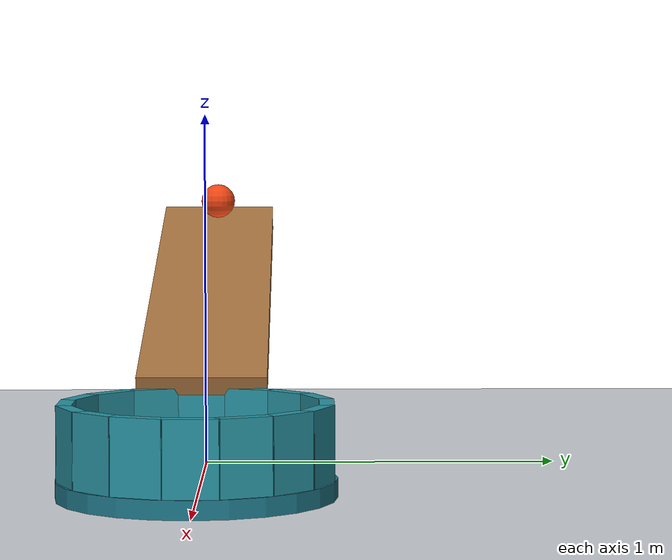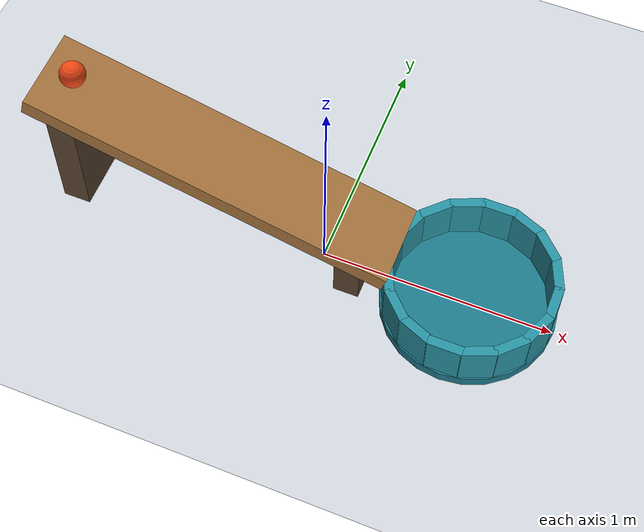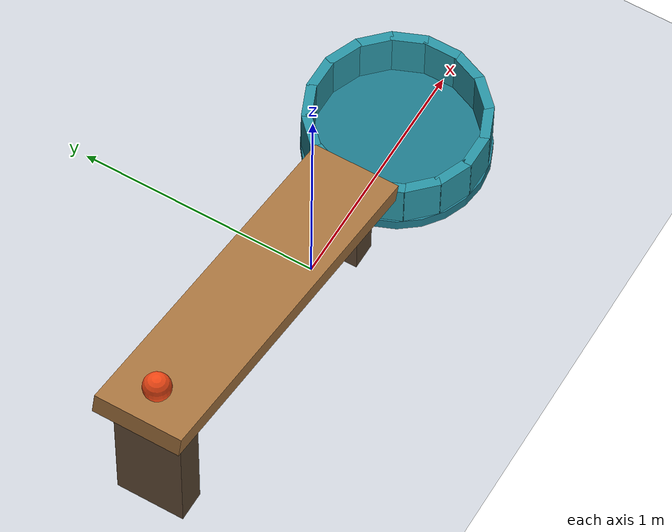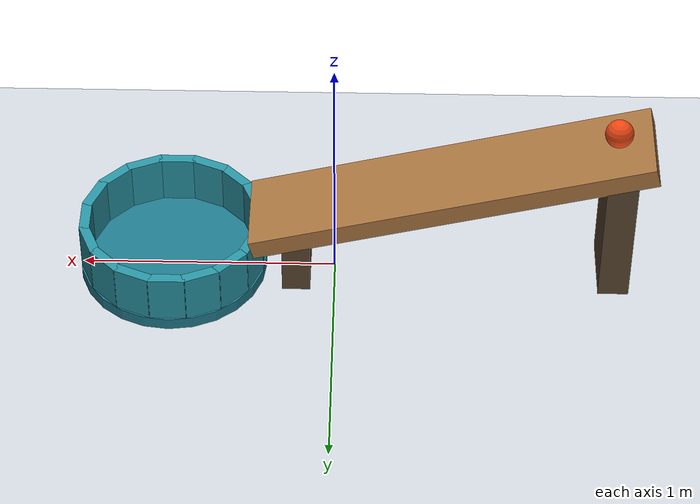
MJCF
<mujoco model="ball_ramp_cup">
  <compiler angle="degree"/>
  <option timestep="0.002" gravity="0 0 -9.81" integrator="implicitfast" solver="Newton" iterations="100" cone="elliptic"/>

  <visual>
    <headlight ambient="0.35 0.35 0.35" diffuse="0.65 0.65 0.65"/>
  </visual>

  <worldbody>
    <light name="main_light" pos="-1 -2 3" dir="0.2 0.4 -1" directional="true"/>
    <camera name="overview" pos="1.7 -3 2.1" xyaxes="0.838 0.545 0 -0.25 0.385 0.888"/>

    <geom name="floor" type="plane" pos="0 0 0" size="4 3 0.1" rgba="0.82 0.84 0.87 1" condim="6" friction="0.9 0.02 0.008" solref="0.012 1"/>

    <geom name="ramp_support_high" type="box" pos="-1.10 0 0.30" size="0.06 0.14 0.30" rgba="0.35 0.27 0.19 1"/>
    <geom name="ramp_support_low" type="box" pos="0.15 0 0.12" size="0.055 0.14 0.12" rgba="0.35 0.27 0.19 1"/>

    <body name="ramp" pos="-0.45 0 0.45" euler="0 15 0">
      <geom name="ramp_surface" type="box" size="0.80 0.18 0.04" rgba="0.66 0.46 0.25 1" condim="6" friction="0.9 0.02 0.008" solref="0.012 1"/>
    </body>

    <body name="cup" pos="0.64 0 0">
      <geom name="cup_base" type="cylinder" pos="0 0 0.025" size="0.37 0.025" rgba="0.12 0.48 0.55 1" condim="6" friction="0.9 0.02 0.03" solref="0.012 1"/>
      <geom name="cup_wall_00" type="box" pos="0.34 0 0.15" euler="0 0 0" size="0.02 0.073 0.10" rgba="0.16 0.58 0.64 1" condim="6" friction="0.9 0.02 0.03" solref="0.012 1"/>
      <geom name="cup_wall_01" type="box" pos="0.314119 0.130112 0.15" euler="0 0 22.5" size="0.02 0.073 0.10" rgba="0.16 0.58 0.64 1" condim="6" friction="0.9 0.02 0.03" solref="0.012 1"/>
      <geom name="cup_wall_02" type="box" pos="0.240416 0.240416 0.15" euler="0 0 45" size="0.02 0.073 0.10" rgba="0.16 0.58 0.64 1" condim="6" friction="0.9 0.02 0.03" solref="0.012 1"/>
      <geom name="cup_wall_03" type="box" pos="0.130112 0.314119 0.15" euler="0 0 67.5" size="0.02 0.073 0.10" rgba="0.16 0.58 0.64 1" condim="6" friction="0.9 0.02 0.03" solref="0.012 1"/>
      <geom name="cup_wall_04" type="box" pos="0 0.34 0.15" euler="0 0 90" size="0.02 0.073 0.10" rgba="0.16 0.58 0.64 1" condim="6" friction="0.9 0.02 0.03" solref="0.012 1"/>
      <geom name="cup_wall_05" type="box" pos="-0.130112 0.314119 0.15" euler="0 0 112.5" size="0.02 0.073 0.10" rgba="0.16 0.58 0.64 1" condim="6" friction="0.9 0.02 0.03" solref="0.012 1"/>
      <geom name="cup_wall_06" type="box" pos="-0.240416 0.240416 0.15" euler="0 0 135" size="0.02 0.073 0.10" rgba="0.16 0.58 0.64 1" condim="6" friction="0.9 0.02 0.03" solref="0.012 1"/>
      <geom name="cup_wall_07" type="box" pos="-0.314119 0.130112 0.15" euler="0 0 157.5" size="0.02 0.073 0.10" rgba="0.16 0.58 0.64 1" condim="6" friction="0.9 0.02 0.03" solref="0.012 1"/>
      <geom name="cup_wall_08" type="box" pos="-0.34 0 0.15" euler="0 0 180" size="0.02 0.073 0.10" rgba="0.16 0.58 0.64 1" condim="6" friction="0.9 0.02 0.03" solref="0.012 1"/>
      <geom name="cup_wall_09" type="box" pos="-0.314119 -0.130112 0.15" euler="0 0 202.5" size="0.02 0.073 0.10" rgba="0.16 0.58 0.64 1" condim="6" friction="0.9 0.02 0.03" solref="0.012 1"/>
      <geom name="cup_wall_10" type="box" pos="-0.240416 -0.240416 0.15" euler="0 0 225" size="0.02 0.073 0.10" rgba="0.16 0.58 0.64 1" condim="6" friction="0.9 0.02 0.03" solref="0.012 1"/>
      <geom name="cup_wall_11" type="box" pos="-0.130112 -0.314119 0.15" euler="0 0 247.5" size="0.02 0.073 0.10" rgba="0.16 0.58 0.64 1" condim="6" friction="0.9 0.02 0.03" solref="0.012 1"/>
      <geom name="cup_wall_12" type="box" pos="0 -0.34 0.15" euler="0 0 270" size="0.02 0.073 0.10" rgba="0.16 0.58 0.64 1" condim="6" friction="0.9 0.02 0.03" solref="0.012 1"/>
      <geom name="cup_wall_13" type="box" pos="0.130112 -0.314119 0.15" euler="0 0 292.5" size="0.02 0.073 0.10" rgba="0.16 0.58 0.64 1" condim="6" friction="0.9 0.02 0.03" solref="0.012 1"/>
      <geom name="cup_wall_14" type="box" pos="0.240416 -0.240416 0.15" euler="0 0 315" size="0.02 0.073 0.10" rgba="0.16 0.58 0.64 1" condim="6" friction="0.9 0.02 0.03" solref="0.012 1"/>
      <geom name="cup_wall_15" type="box" pos="0.314119 -0.130112 0.15" euler="0 0 337.5" size="0.02 0.073 0.10" rgba="0.16 0.58 0.64 1" condim="6" friction="0.9 0.02 0.03" solref="0.012 1"/>
    </body>

    <body name="ball" pos="-1.08 0 0.72">
      <freejoint name="ball_free"/>
      <geom name="ball" type="sphere" size="0.055" mass="0.12" rgba="0.95 0.28 0.08 1" condim="6" friction="0.9 0.02 0.008" solref="0.012 1"/>
    </body>
  </worldbody>

  <keyframe>
    <key name="start" qpos="-1.08 0 0.72 1 0 0 0" qvel="0 0 0 0 0 0"/>
  </keyframe>
</mujoco>
